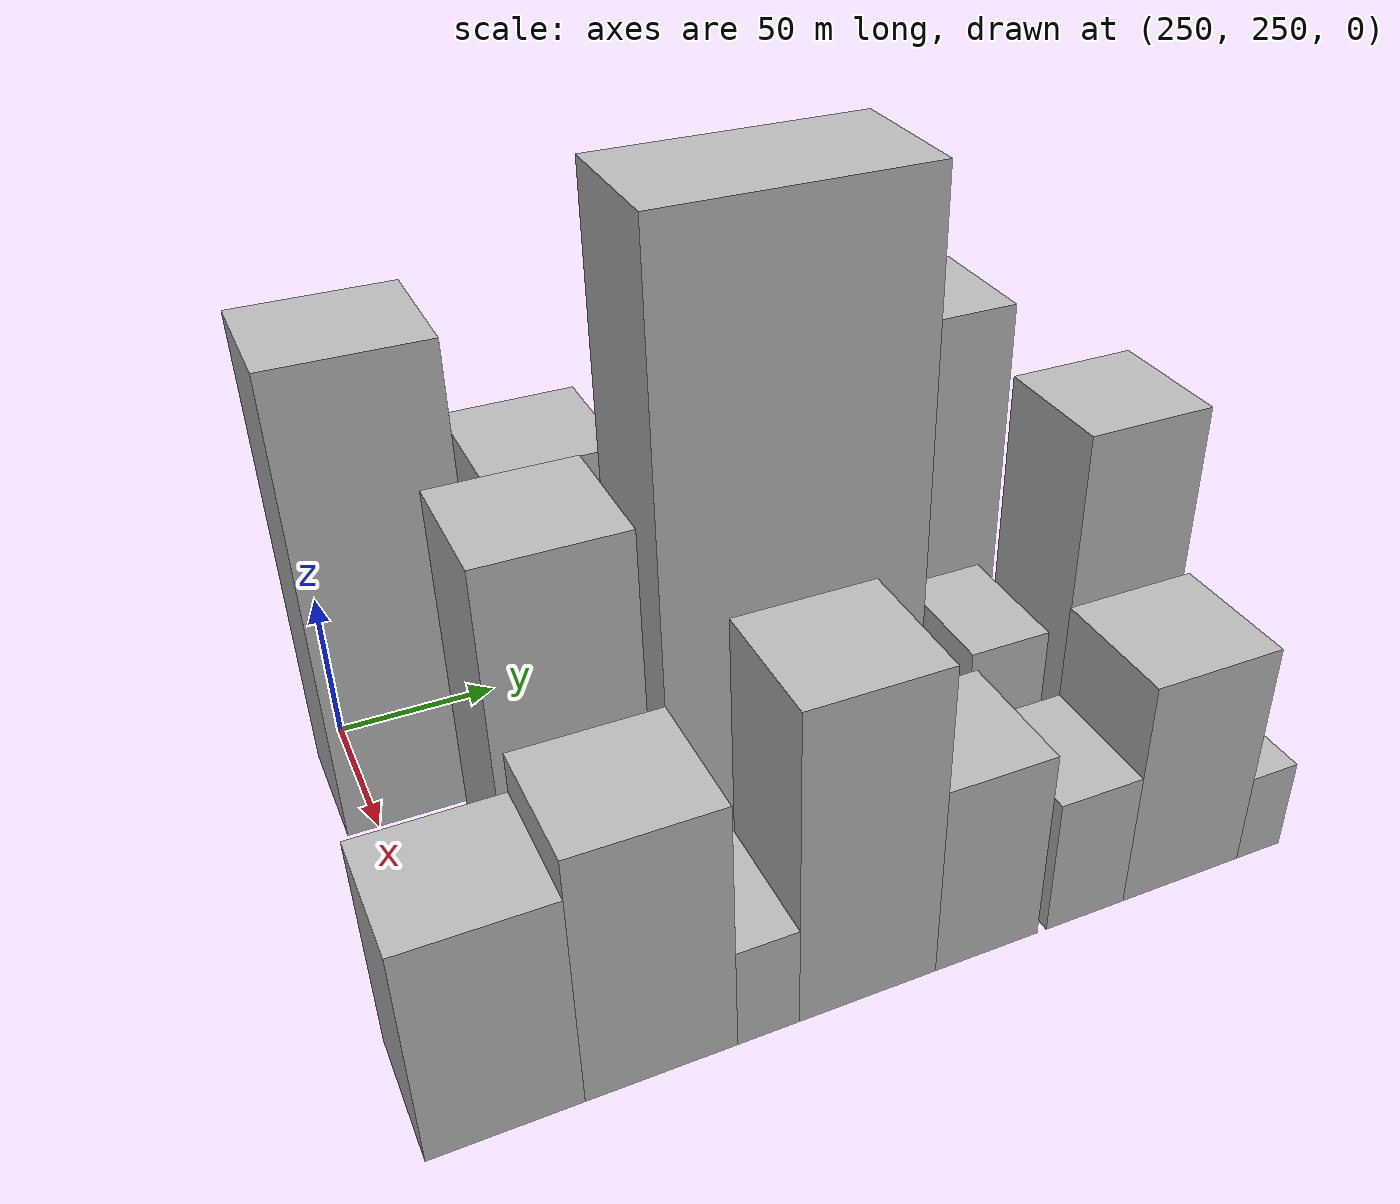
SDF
<sdf version="1.6">
 <world name="default">
  <model name="building_195">
   <static>1</static>
   <pose>280.0000 263.8542 0 0.000000 0.000000 0.000000</pose>
   <link name="link">
    <pose>0 0 75.00 0 0 0</pose>
    <collision name="collision"><geometry><box><size>40.0000 46.3127 150.0000</size></box></geometry></collision>
    <visual name="visual">
     <cast_shadows>0</cast_shadows>
     <geometry><box><size>40.0000 46.3127 150.0000</size></box></geometry>
     <material>
      <script>
       <uri>model://HANNAS_wall/materials/scripts</uri>
       <uri>model://HANNAS_wall/materials/textures</uri>
       <name>vrc/HANNAS_wall</name>
      </script>
     </material>
    </visual>
   </link>
  </model>
  <model name="building_196">
   <static>1</static>
   <pose>280.0000 313.0113 0 0.000000 0.000000 0.000000</pose>
   <link name="link">
    <pose>0 0 54.00 0 0 0</pose>
    <collision name="collision"><geometry><box><size>40.0000 40.0014 108.0000</size></box></geometry></collision>
    <visual name="visual">
     <cast_shadows>0</cast_shadows>
     <geometry><box><size>40.0000 40.0014 108.0000</size></box></geometry>
     <material>
      <script>
       <uri>model://HANNAS_wall/materials/scripts</uri>
       <uri>model://HANNAS_wall/materials/textures</uri>
       <name>vrc/HANNAS_wall</name>
      </script>
     </material>
    </visual>
   </link>
  </model>
  <model name="building_197">
   <static>1</static>
   <pose>280.0000 346.7867 0 0.000000 0.000000 0.000000</pose>
   <link name="link">
    <pose>0 0 25.50 0 0 0</pose>
    <collision name="collision"><geometry><box><size>40.0000 27.5494 51.0000</size></box></geometry></collision>
    <visual name="visual">
     <cast_shadows>0</cast_shadows>
     <geometry><box><size>40.0000 27.5494 51.0000</size></box></geometry>
     <material>
      <script>
       <uri>model://HANNAS_wall/materials/scripts</uri>
       <uri>model://HANNAS_wall/materials/textures</uri>
       <name>vrc/HANNAS_wall</name>
      </script>
     </material>
    </visual>
   </link>
  </model>
  <model name="building_198">
   <static>1</static>
   <pose>280.0000 363.6494 0 0.000000 0.000000 0.000000</pose>
   <link name="link">
    <pose>0 0 7.50 0 0 0</pose>
    <collision name="collision"><geometry><box><size>40.0000 6.1761 15.0000</size></box></geometry></collision>
    <visual name="visual">
     <cast_shadows>0</cast_shadows>
     <geometry><box><size>40.0000 6.1761 15.0000</size></box></geometry>
     <material>
      <script>
       <uri>model://HANNAS_wall/materials/scripts</uri>
       <uri>model://HANNAS_wall/materials/textures</uri>
       <name>vrc/HANNAS_wall</name>
      </script>
     </material>
    </visual>
   </link>
  </model>
  <model name="building_199">
   <static>1</static>
   <pose>280.0000 380.2682 0 0.000000 0.000000 0.000000</pose>
   <link name="link">
    <pose>0 0 18.00 0 0 0</pose>
    <collision name="collision"><geometry><box><size>40.0000 19.0615 36.0000</size></box></geometry></collision>
    <visual name="visual">
     <cast_shadows>0</cast_shadows>
     <geometry><box><size>40.0000 19.0615 36.0000</size></box></geometry>
     <material>
      <script>
       <uri>model://HANNAS_wall/materials/scripts</uri>
       <uri>model://HANNAS_wall/materials/textures</uri>
       <name>vrc/HANNAS_wall</name>
      </script>
     </material>
    </visual>
   </link>
  </model>
  <model name="building_200">
   <static>1</static>
   <pose>280.0000 401.0142 0 0.000000 0.000000 0.000000</pose>
   <link name="link">
    <pose>0 0 21.00 0 0 0</pose>
    <collision name="collision"><geometry><box><size>40.0000 22.4304 42.0000</size></box></geometry></collision>
    <visual name="visual">
     <cast_shadows>0</cast_shadows>
     <geometry><box><size>40.0000 22.4304 42.0000</size></box></geometry>
     <material>
      <script>
       <uri>model://HANNAS_wall/materials/scripts</uri>
       <uri>model://HANNAS_wall/materials/textures</uri>
       <name>vrc/HANNAS_wall</name>
      </script>
     </material>
    </visual>
   </link>
  </model>
  <model name="building_201">
   <static>1</static>
   <pose>280.0000 435.7184 0 0.000000 0.000000 0.000000</pose>
   <link name="link">
    <pose>0 0 63.00 0 0 0</pose>
    <collision name="collision"><geometry><box><size>40.0000 46.9782 126.0000</size></box></geometry></collision>
    <visual name="visual">
     <cast_shadows>0</cast_shadows>
     <geometry><box><size>40.0000 46.9782 126.0000</size></box></geometry>
     <material>
      <script>
       <uri>model://HANNAS_wall/materials/scripts</uri>
       <uri>model://HANNAS_wall/materials/textures</uri>
       <name>vrc/HANNAS_wall</name>
      </script>
     </material>
    </visual>
   </link>
  </model>
  <model name="building_252">
   <static>1</static>
   <pose>340.0000 269.7279 0 0.000000 0.000000 0.000000</pose>
   <link name="link">
    <pose>0 0 7.50 0 0 0</pose>
    <collision name="collision"><geometry><box><size>40.0000 6.1880 15.0000</size></box></geometry></collision>
    <visual name="visual">
     <cast_shadows>0</cast_shadows>
     <geometry><box><size>40.0000 6.1880 15.0000</size></box></geometry>
     <material>
      <script>
       <uri>model://HANNAS_wall/materials/scripts</uri>
       <uri>model://HANNAS_wall/materials/textures</uri>
       <name>vrc/HANNAS_wall</name>
      </script>
     </material>
    </visual>
   </link>
  </model>
  <model name="building_253">
   <static>1</static>
   <pose>340.0000 293.8194 0 0.000000 0.000000 0.000000</pose>
   <link name="link">
    <pose>0 0 60.00 0 0 0</pose>
    <collision name="collision"><geometry><box><size>40.0000 41.9950 120.0000</size></box></geometry></collision>
    <visual name="visual">
     <cast_shadows>0</cast_shadows>
     <geometry><box><size>40.0000 41.9950 120.0000</size></box></geometry>
     <material>
      <script>
       <uri>model://HANNAS_wall/materials/scripts</uri>
       <uri>model://HANNAS_wall/materials/textures</uri>
       <name>vrc/HANNAS_wall</name>
      </script>
     </material>
    </visual>
   </link>
  </model>
  <model name="building_254">
   <static>1</static>
   <pose>340.0000 358.3459 0 0.000000 0.000000 0.000000</pose>
   <link name="link">
    <pose>0 0 99.00 0 0 0</pose>
    <collision name="collision"><geometry><box><size>40.0000 77.0580 198.0000</size></box></geometry></collision>
    <visual name="visual">
     <cast_shadows>0</cast_shadows>
     <geometry><box><size>40.0000 77.0580 198.0000</size></box></geometry>
     <material>
      <script>
       <uri>model://HANNAS_wall/materials/scripts</uri>
       <uri>model://HANNAS_wall/materials/textures</uri>
       <name>vrc/HANNAS_wall</name>
      </script>
     </material>
    </visual>
   </link>
  </model>
  <model name="building_255">
   <static>1</static>
   <pose>340.0000 405.4837 0 0.000000 0.000000 0.000000</pose>
   <link name="link">
    <pose>0 0 15.00 0 0 0</pose>
    <collision name="collision"><geometry><box><size>40.0000 17.2176 30.0000</size></box></geometry></collision>
    <visual name="visual">
     <cast_shadows>0</cast_shadows>
     <geometry><box><size>40.0000 17.2176 30.0000</size></box></geometry>
     <material>
      <script>
       <uri>model://HANNAS_wall/materials/scripts</uri>
       <uri>model://HANNAS_wall/materials/textures</uri>
       <name>vrc/HANNAS_wall</name>
      </script>
     </material>
    </visual>
   </link>
  </model>
  <model name="building_256">
   <static>1</static>
   <pose>340.0000 426.9658 0 0.000000 0.000000 0.000000</pose>
   <link name="link">
    <pose>0 0 25.50 0 0 0</pose>
    <collision name="collision"><geometry><box><size>40.0000 25.7465 51.0000</size></box></geometry></collision>
    <visual name="visual">
     <cast_shadows>0</cast_shadows>
     <geometry><box><size>40.0000 25.7465 51.0000</size></box></geometry>
     <material>
      <script>
       <uri>model://HANNAS_wall/materials/scripts</uri>
       <uri>model://HANNAS_wall/materials/textures</uri>
       <name>vrc/HANNAS_wall</name>
      </script>
     </material>
    </visual>
   </link>
  </model>
  <model name="building_257">
   <static>1</static>
   <pose>340.0000 466.8127 0 0.000000 0.000000 0.000000</pose>
   <link name="link">
    <pose>0 0 57.00 0 0 0</pose>
    <collision name="collision"><geometry><box><size>40.0000 39.9473 114.0000</size></box></geometry></collision>
    <visual name="visual">
     <cast_shadows>0</cast_shadows>
     <geometry><box><size>40.0000 39.9473 114.0000</size></box></geometry>
     <material>
      <script>
       <uri>model://HANNAS_wall/materials/scripts</uri>
       <uri>model://HANNAS_wall/materials/textures</uri>
       <name>vrc/HANNAS_wall</name>
      </script>
     </material>
    </visual>
   </link>
  </model>
  <model name="building_303">
   <static>1</static>
   <pose>400.0000 251.4895 0 0.000000 0.000000 0.000000</pose>
   <link name="link">
    <pose>0 0 34.50 0 0 0</pose>
    <collision name="collision"><geometry><box><size>40.0000 40.1062 69.0000</size></box></geometry></collision>
    <visual name="visual">
     <cast_shadows>0</cast_shadows>
     <geometry><box><size>40.0000 40.1062 69.0000</size></box></geometry>
     <material>
      <script>
       <uri>model://HANNAS_wall/materials/scripts</uri>
       <uri>model://HANNAS_wall/materials/textures</uri>
       <name>vrc/HANNAS_wall</name>
      </script>
     </material>
    </visual>
   </link>
  </model>
  <model name="building_304">
   <static>1</static>
   <pose>400.0000 292.0637 0 0.000000 0.000000 0.000000</pose>
   <link name="link">
    <pose>0 0 40.50 0 0 0</pose>
    <collision name="collision"><geometry><box><size>40.0000 41.0422 81.0000</size></box></geometry></collision>
    <visual name="visual">
     <cast_shadows>0</cast_shadows>
     <geometry><box><size>40.0000 41.0422 81.0000</size></box></geometry>
     <material>
      <script>
       <uri>model://HANNAS_wall/materials/scripts</uri>
       <uri>model://HANNAS_wall/materials/textures</uri>
       <name>vrc/HANNAS_wall</name>
      </script>
     </material>
    </visual>
   </link>
  </model>
  <model name="building_305">
   <static>1</static>
   <pose>400.0000 321.3193 0 0.000000 0.000000 0.000000</pose>
   <link name="link">
    <pose>0 0 16.50 0 0 0</pose>
    <collision name="collision"><geometry><box><size>40.0000 17.4691 33.0000</size></box></geometry></collision>
    <visual name="visual">
     <cast_shadows>0</cast_shadows>
     <geometry><box><size>40.0000 17.4691 33.0000</size></box></geometry>
     <material>
      <script>
       <uri>model://HANNAS_wall/materials/scripts</uri>
       <uri>model://HANNAS_wall/materials/textures</uri>
       <name>vrc/HANNAS_wall</name>
      </script>
     </material>
    </visual>
   </link>
  </model>
  <model name="building_306">
   <static>1</static>
   <pose>400.0000 350.2452 0 0.000000 0.000000 0.000000</pose>
   <link name="link">
    <pose>0 0 51.00 0 0 0</pose>
    <collision name="collision"><geometry><box><size>40.0000 40.3827 102.0000</size></box></geometry></collision>
    <visual name="visual">
     <cast_shadows>0</cast_shadows>
     <geometry><box><size>40.0000 40.3827 102.0000</size></box></geometry>
     <material>
      <script>
       <uri>model://HANNAS_wall/materials/scripts</uri>
       <uri>model://HANNAS_wall/materials/textures</uri>
       <name>vrc/HANNAS_wall</name>
      </script>
     </material>
    </visual>
   </link>
  </model>
  <model name="building_307">
   <static>1</static>
   <pose>400.0000 386.4615 0 0.000000 0.000000 0.000000</pose>
   <link name="link">
    <pose>0 0 31.50 0 0 0</pose>
    <collision name="collision"><geometry><box><size>40.0000 32.0497 63.0000</size></box></geometry></collision>
    <visual name="visual">
     <cast_shadows>0</cast_shadows>
     <geometry><box><size>40.0000 32.0497 63.0000</size></box></geometry>
     <material>
      <script>
       <uri>model://HANNAS_wall/materials/scripts</uri>
       <uri>model://HANNAS_wall/materials/textures</uri>
       <name>vrc/HANNAS_wall</name>
      </script>
     </material>
    </visual>
   </link>
  </model>
  <model name="building_308">
   <static>1</static>
   <pose>400.0000 418.2034 0 0.000000 0.000000 0.000000</pose>
   <link name="link">
    <pose>0 0 22.50 0 0 0</pose>
    <collision name="collision"><geometry><box><size>40.0000 25.4343 45.0000</size></box></geometry></collision>
    <visual name="visual">
     <cast_shadows>0</cast_shadows>
     <geometry><box><size>40.0000 25.4343 45.0000</size></box></geometry>
     <material>
      <script>
       <uri>model://HANNAS_wall/materials/scripts</uri>
       <uri>model://HANNAS_wall/materials/textures</uri>
       <name>vrc/HANNAS_wall</name>
      </script>
     </material>
    </visual>
   </link>
  </model>
  <model name="building_309">
   <static>1</static>
   <pose>400.0000 450.7645 0 0.000000 0.000000 0.000000</pose>
   <link name="link">
    <pose>0 0 37.50 0 0 0</pose>
    <collision name="collision"><geometry><box><size>40.0000 39.6878 75.0000</size></box></geometry></collision>
    <visual name="visual">
     <cast_shadows>0</cast_shadows>
     <geometry><box><size>40.0000 39.6878 75.0000</size></box></geometry>
     <material>
      <script>
       <uri>model://HANNAS_wall/materials/scripts</uri>
       <uri>model://HANNAS_wall/materials/textures</uri>
       <name>vrc/HANNAS_wall</name>
      </script>
     </material>
    </visual>
   </link>
  </model>
  <model name="building_310">
   <static>1</static>
   <pose>400.0000 478.1933 0 0.000000 0.000000 0.000000</pose>
   <link name="link">
    <pose>0 0 15.00 0 0 0</pose>
    <collision name="collision"><geometry><box><size>40.0000 15.1699 30.0000</size></box></geometry></collision>
    <visual name="visual">
     <cast_shadows>0</cast_shadows>
     <geometry><box><size>40.0000 15.1699 30.0000</size></box></geometry>
     <material>
      <script>
       <uri>model://HANNAS_wall/materials/scripts</uri>
       <uri>model://HANNAS_wall/materials/textures</uri>
       <name>vrc/HANNAS_wall</name>
      </script>
     </material>
    </visual>
   </link>
  </model>
 </world>
</sdf>
